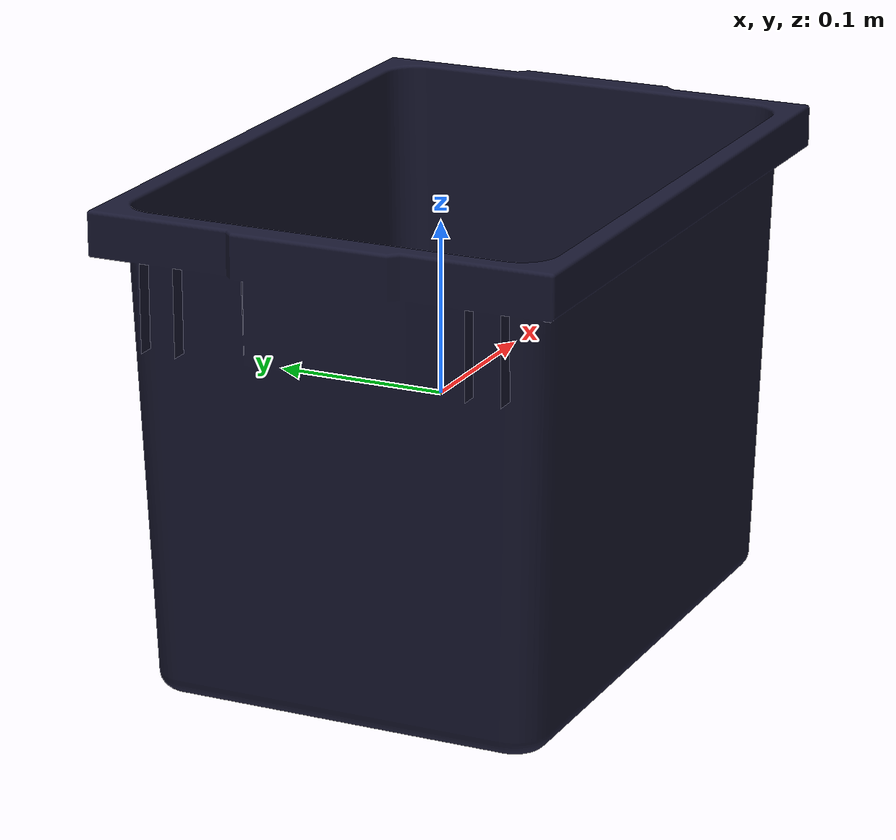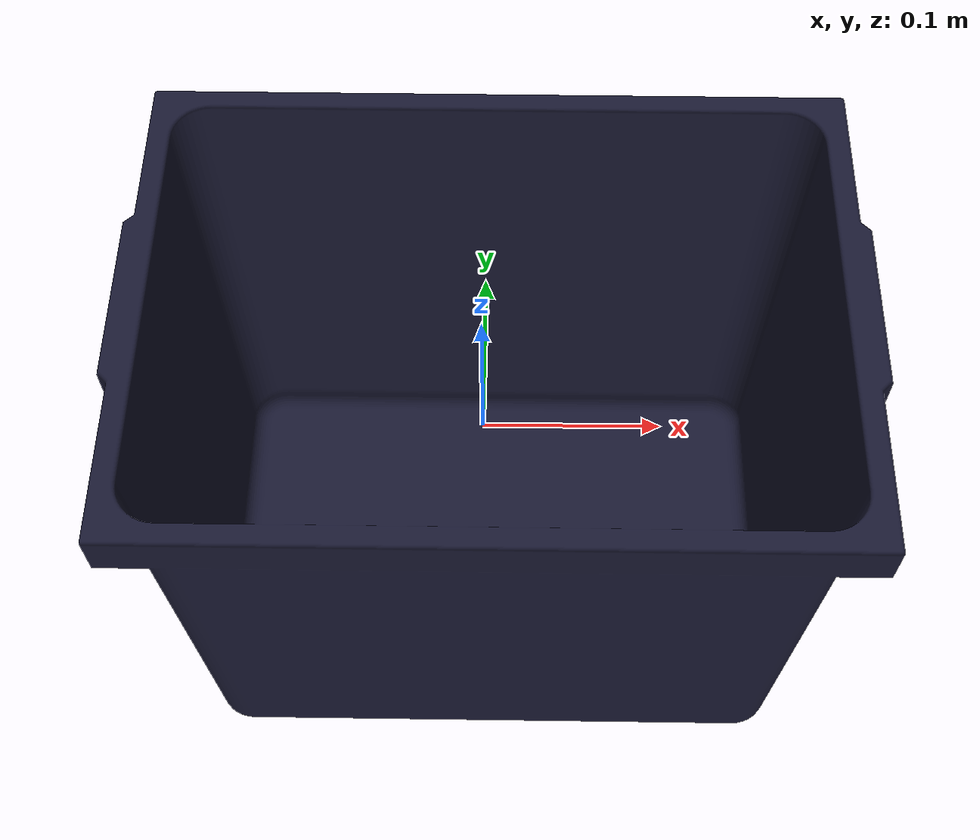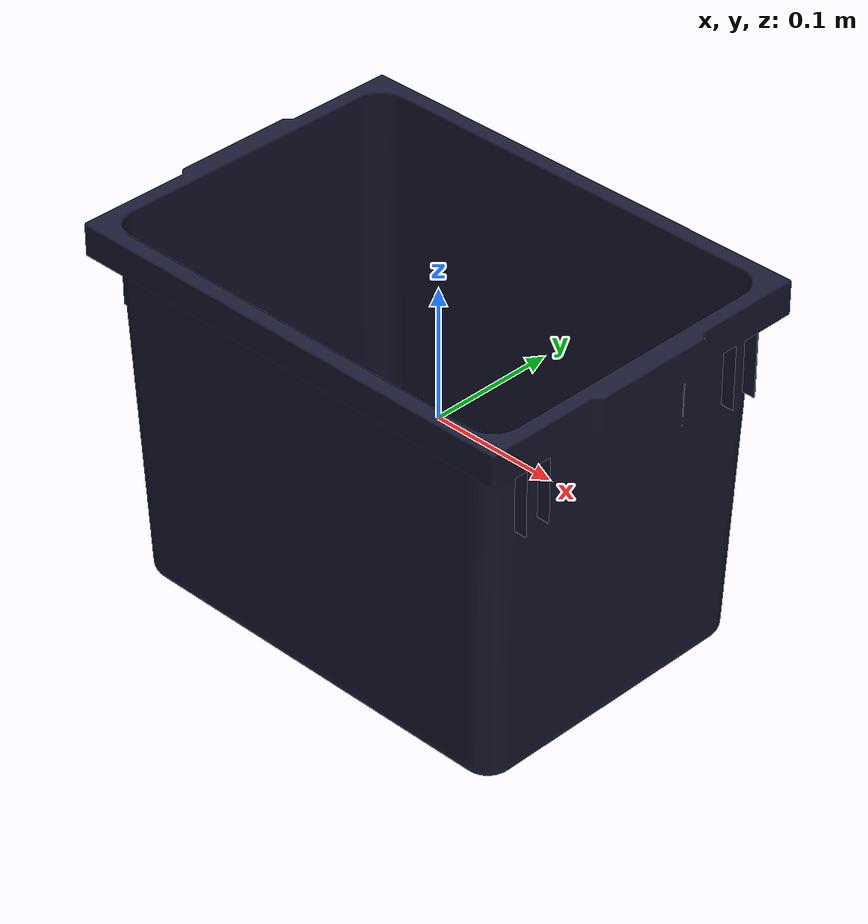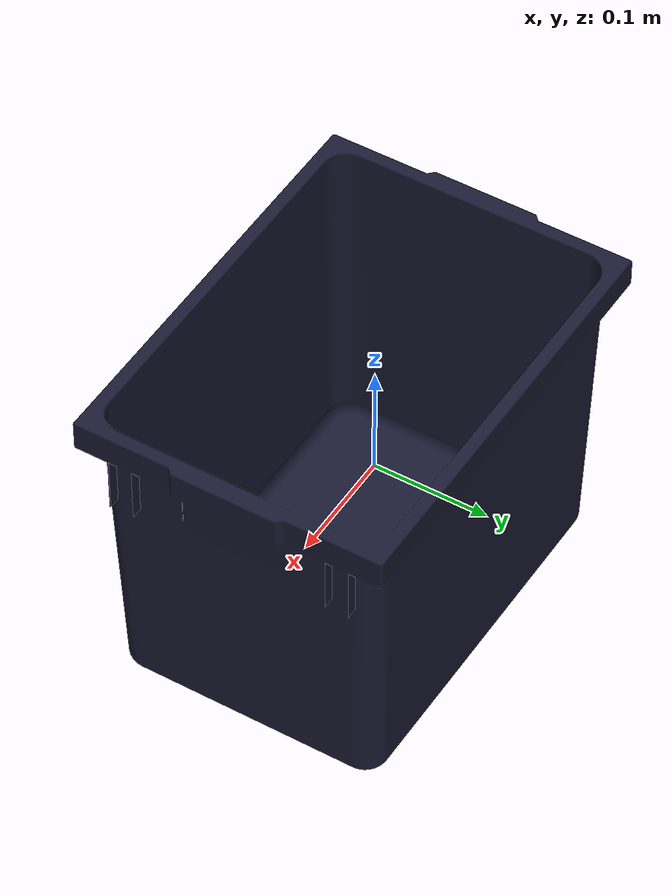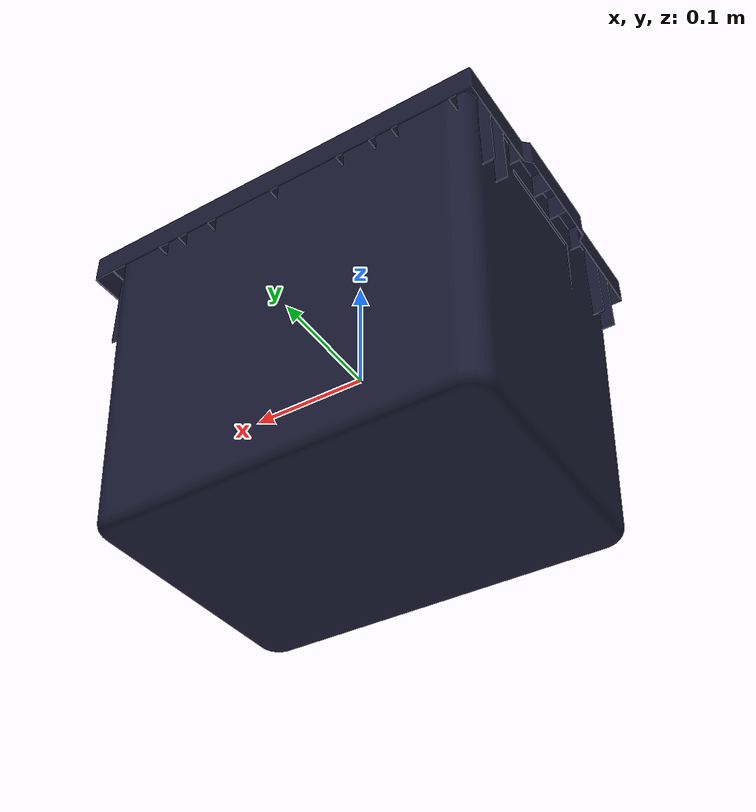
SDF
<?xml version='1.0'?>
<sdf version='1.6'>
  <model name='BIN'>
    <link name='main'>
      <inertial>
        <mass>5</mass>
      </inertial>
      <collision name="collision">
        <geometry>
          <mesh>
            <uri>model://Bin/meshes/bin.dae</uri>
          </mesh>
        </geometry>
        <surface>
          <friction>
            <ode>
              <mu>0.5</mu>
              <mu2>0.5</mu2>
              <slip1>10</slip1>
              <slip2>10</slip2>
            </ode>
          </friction>
        </surface>
          <contact>
            <ode>
              <min_depth>0.1</min_depth>
              <kp>1e8</kp>
              <kd>1e3</kd>
            </ode>
          </contact>
      </collision>
      <visual name="visual">
        <geometry>
          <mesh>
            <uri>model://Bin/meshes/bin.dae</uri>
          </mesh>
        </geometry>
        <material>
          <ambient>0.1 0.1 0.1 1</ambient>
          <diffuse>0.1 0.1 0.2 1</diffuse>
          <specular>0 0 0 0</specular>
          <emissive>0 0 0 1</emissive>
        </material>
      </visual>
    </link>
    <static>0</static>
  </model>
</sdf>
